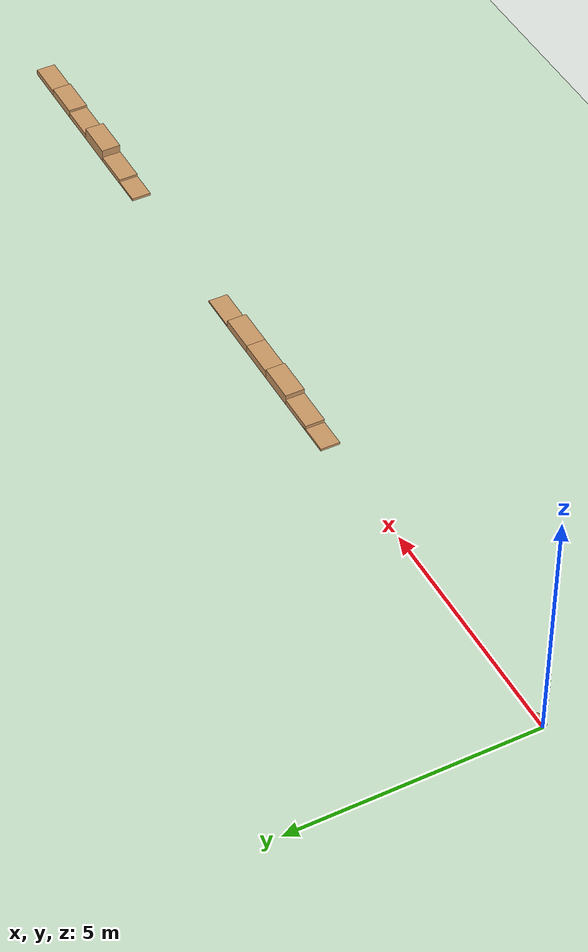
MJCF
<mujoco model="walker2d">
  <compiler angle="degree" coordinate="global" inertiafromgeom="true"/>
  <default>
    <joint armature="0.01" damping=".1" limited="true"/>
    <geom conaffinity="0" condim="3" contype="1" density="1000" friction=".7 .1 .1" rgba="0.8 0.6 .4 1"/>
  </default>
  <option integrator="RK4" timestep="0.002"/>
  <worldbody>
			<body name="obsticle_1" pos="8 0 0" euler = "0 0 0">
        <geom name="obsticle_1" contype="1" conaffinity="1" pos="8 0 0" size="0.4 0.2 0.03" type="box"/>
			</body>
			<body name="obsticle_2" pos="8.6 0 0" euler = "0 0 0">
        <geom name="obsticle_2" contype="1" conaffinity="1" pos="8.6 0 0" size="0.4 0.2 0.1" type="box"/>
			</body>
			<body name="obsticle_3" pos="9.4 0 0" euler = "0 0 0">
        <geom name="obsticle_3" contype="1" conaffinity="1" pos="9.4 0 0" size="0.4 0.2 0.2" type="box"/>
			</body>
			<body name="obsticle_4" pos="10.2 0 0" euler = "0 0 0">
        <geom name="obsticle_4" contype="1" conaffinity="1" pos="10.2 0 0" size="0.4 0.2 0.15" type="box"/>
			</body>
			<body name="obsticle_5" pos="11.0 0 0" euler = "0 0 0">
        <geom name="obsticle_5" contype="1" conaffinity="1" pos="11.0 0 0" size="0.4 0.2 0.15" type="box"/>
			</body>
			<body name="obsticle_6" pos="11.8 0 0" euler = "0 0 0">
        <geom name="obsticle_6" contype="1" conaffinity="1" pos="11.8 0 0" size="0.4 0.2 0.02" type="box"/>
			</body>

			<body name="obsticle_7" pos="16 0 0" euler = "0 0 0">
        <geom name="obsticle_7" contype="1" conaffinity="1" pos="16 0 0" size="0.4 0.2 0.03" type="box"/>
			</body>
			<body name="obsticle_8" pos="16.6 0 0" euler = "0 0 0">
        <geom name="obsticle_8" contype="1" conaffinity="1" pos="16.6 0 0" size="0.4 0.2 0.08" type="box"/>
			</body>
			<body name="obsticle_9" pos="17.4 0 0" euler = "0 0 0">
        <geom name="obsticle_9" contype="1" conaffinity="1" pos="17.4 0 0" size="0.4 0.2 0.25" type="box"/>
			</body>
			<body name="obsticle_10" pos="18.2 0 0" euler = "0 0 0">
        <geom name="obsticle_10" contype="1" conaffinity="1" pos="18.2 0 0" size="0.4 0.2 0.1" type="box"/>
			</body>
			<body name="obsticle_11" pos="19.0 0 0" euler = "0 0 0">
        <geom name="obsticle_11" contype="1" conaffinity="1" pos="19.0 0 0" size="0.4 0.2 0.15" type="box"/>
			</body>
			<body name="obsticle_12" pos="19.8 0 0" euler = "0 0 0">
        <geom name="obsticle_12" contype="1" conaffinity="1" pos="19.8 0 0" size="0.4 0.2 0.1" type="box"/>
			</body>
    <light cutoff="100" diffuse="1 1 1" dir="-0 0 -1.3" directional="true" exponent="1" pos="0 0 1.3" specular=".1 .1 .1"/>
    <geom conaffinity="1" condim="3" name="floor" pos="0 0 0" rgba="0.8 0.9 0.8 1" size="100 100 100" type="plane" material="MatPlane"/>
    <body name="torso" pos="0 0 1.25">
    		<site name="range_site_1" pos="0 0 1.55" size="0.01 0.01 0.01" euler="0 110 0" type="cylinder"/>
				<site name="range_site_2" pos="0 0 1.55" size="0.01 0.01 0.01" euler="0 115 0" type="cylinder"/>
				<site name="range_site_3" pos="0 0 1.55" size="0.01 0.01 0.01" euler="0 120 0" type="cylinder"/>
				<site name="range_site_4" pos="0 0 1.55" size="0.01 0.01 0.01" euler="0 125 0" type="cylinder"/>
				<site name="range_site_5" pos="0 0 1.55" size="0.01 0.01 0.01" euler="0 130 0" type="cylinder"/>
				<site name="range_site_6" pos="0 0 1.55" size="0.01 0.01 0.01" euler="0 135 0" type="cylinder"/>
				<site name="accel_site" pos="0 0 1.35" size="0.01 0.01 0.01" euler="0 0 0" type="cylinder"/>
				<site name="gyro_site" pos="0 0 1.35" size="0.01 0.01 0.01" euler="0 0 0" type="cylinder"/>
      <camera name="track" mode="trackcom" pos="0 -3 1" xyaxes="1 0 0 0 0 1"/>
      <joint armature="0" axis="1 0 0" damping="0" limited="false" name="rootx" pos="0 0 0" stiffness="0" type="slide"/>
      <joint armature="0" axis="0 0 1" damping="0" limited="false" name="rootz" pos="0 0 0" ref="1.25" stiffness="0" type="slide"/>
      <joint armature="0" axis="0 1 0" damping="0" limited="false" name="rooty" pos="0 0 1.25" stiffness="0" type="hinge"/>
      <geom friction="0.9" fromto="0 0 1.45 0 0 1.05" name="torso_geom" size="0.05" type="capsule"/>
      <body name="thigh" pos="0 0 1.05">
        <joint axis="0 -1 0" name="thigh_joint" pos="0 0 1.05" range="-150 0" type="hinge"/>
        <geom friction="0.9" fromto="0 0 1.05 0 0 0.6" name="thigh_geom" size="0.05" type="capsule"/>
        <body name="leg" pos="0 0 0.35">
          <joint axis="0 -1 0" name="leg_joint" pos="0 0 0.6" range="-150 0" type="hinge"/>
          <geom friction="0.9" fromto="0 0 0.6 0 0 0.1" name="leg_geom" size="0.04" type="capsule"/>
          <body name="foot" pos="0.2 0 0">
            <joint axis="0 -1 0" name="foot_joint" pos="0 0 0.1" range="-45 45" type="hinge"/>
            <geom friction="0.9" fromto="-0.0 0 0.1 0.2 0 0.1" name="foot_geom" size="0.06" type="capsule"/>
          </body>
        </body>
      </body>
      <!-- copied and then replace thigh->thigh_left, leg->leg_left, foot->foot_right -->
      <body name="thigh_left" pos="0 0 1.05">
        <joint axis="0 -1 0" name="thigh_left_joint" pos="0 0 1.05" range="-150 0" type="hinge"/>
        <geom friction="0.9" fromto="0 0 1.05 0 0 0.6" name="thigh_left_geom" rgba=".7 .3 .6 1" size="0.05" type="capsule"/>
        <body name="leg_left" pos="0 0 0.35">
          <joint axis="0 -1 0" name="leg_left_joint" pos="0 0 0.6" range="-150 0" type="hinge"/>
          <geom friction="0.9" fromto="0 0 0.6 0 0 0.1" name="leg_left_geom" rgba=".7 .3 .6 1" size="0.04" type="capsule"/>
          <body name="foot_left" pos="0.2 0 0">
            <joint axis="0 -1 0" name="foot_left_joint" pos="0 0 0.1" range="-45 45" type="hinge"/>
            <geom friction="1.9" fromto="-0.0 0 0.1 0.2 0 0.1" name="foot_left_geom" rgba=".7 .3 .6 1" size="0.06" type="capsule"/>
          </body>
        </body>
      </body>
    </body>
  </worldbody>
  <actuator>
    <motor ctrllimited="true" ctrlrange="-1.0 1.0" gear="100" joint="thigh_joint"/>
    <motor ctrllimited="true" ctrlrange="-1.0 1.0" gear="100" joint="leg_joint"/>
    <motor ctrllimited="true" ctrlrange="-1.0 1.0" gear="100" joint="foot_joint"/>
    <motor ctrllimited="true" ctrlrange="-1.0 1.0" gear="100" joint="thigh_left_joint"/>
    <motor ctrllimited="true" ctrlrange="-1.0 1.0" gear="100" joint="leg_left_joint"/>
    <motor ctrllimited="true" ctrlrange="-1.0 1.0" gear="100" joint="foot_left_joint"/>
  </actuator>
    <asset>
        <texture type="skybox" builtin="gradient" rgb1=".4 .5 .6" rgb2="0 0 0"
            width="100" height="100"/>
        <texture builtin="flat" height="1278" mark="cross" markrgb="1 1 1" name="texgeom" random="0.01" rgb1="0.8 0.6 0.4" rgb2="0.8 0.6 0.4" type="cube" width="127"/>
        <texture builtin="checker" height="100" name="texplane" rgb1="0 0 0" rgb2="0.8 0.8 0.8" type="2d" width="100"/>
        <material name="MatPlane" reflectance="0.5" shininess="1" specular="1" texrepeat="60 60" texture="texplane"/>
        <material name="geom" texture="texgeom" texuniform="true"/>
    </asset>
  <sensor>
    <rangefinder name="range_sensor_1" site="range_site_1" cutoff="10" />
		<rangefinder name="range_sensor_2" site="range_site_2" cutoff="10" />
		<rangefinder name="range_sensor_3" site="range_site_3" cutoff="10" />
		<rangefinder name="range_sensor_4" site="range_site_4" cutoff="10" />
		<rangefinder name="range_sensor_5" site="range_site_5" cutoff="10" />
		<rangefinder name="range_sensor_6" site="range_site_6" cutoff="10" />
  </sensor>
</mujoco>
